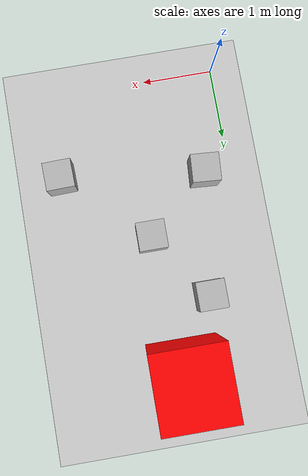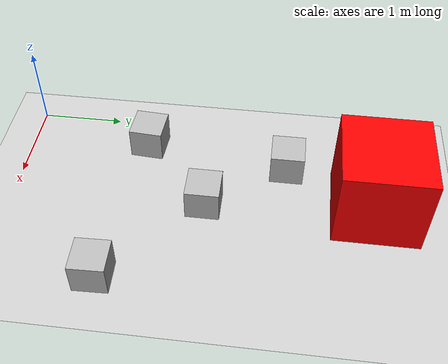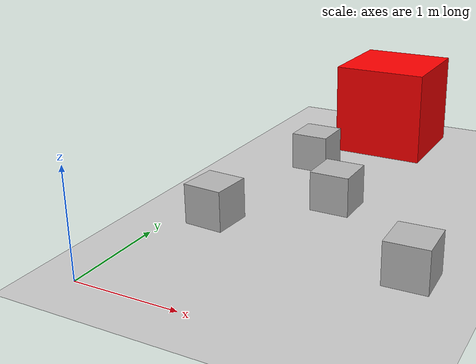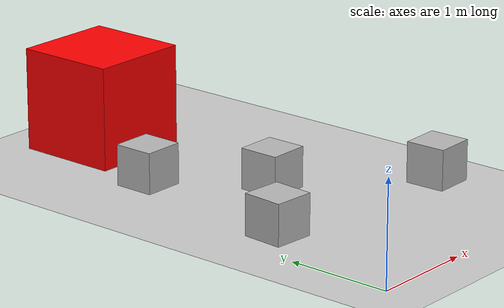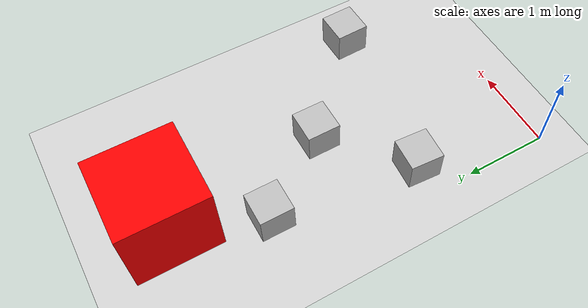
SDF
<sdf version="1.6">
 <world name="default">
  <light name="sun" type="directional">
   <pose>0 0 10 0 -0 0</pose>
   <diffuse>0.8 0.8 0.8 1</diffuse>
   <specular>0.1 0.1 0.1 1</specular>
   <attenuation>
    <range>1000</range>
    <constant>0.9</constant>
    <linear>0.01</linear>
    <quadratic>0.001</quadratic>
   </attenuation>
   <direction>-0.5 0.5 -1</direction>
  </light>
  <model name="ground_plane">
   <static>1</static>
   <link name="link">
    <collision name="collision">
     <geometry><plane><normal>0 0 1</normal><size>100 100</size></plane></geometry>
     <surface><friction><ode><mu>100</mu><mu2>50</mu2></ode></friction></surface>
    </collision>
    <visual name="visual">
     <cast_shadows>0</cast_shadows>
     <geometry><plane><normal>0 0 1</normal><size>100 100</size></plane></geometry>
     <material>
      <script><uri>file://media/materials/scripts/gazebo.material</uri><name>Gazebo/Grey</name></script>
     </material>
    </visual>
   </link>
  </model>
  <gravity>0 0 -9.8</gravity>
  <magnetic_field>6e-06 2.3e-05 -4.2e-05</magnetic_field>
  <atmosphere type="adiabatic"/>
  <physics name="default_physics" default="0" type="ode">
   <max_step_size>0.001</max_step_size>
   <real_time_factor>1</real_time_factor>
   <real_time_update_rate>1000</real_time_update_rate>
  </physics>
  <scene><ambient>0.4 0.4 0.4 1</ambient><background>0.7 0.7 0.7 1</background><shadows>1</shadows></scene>
  <spherical_coordinates>
   <surface_model>EARTH_WGS84</surface_model>
   <latitude_deg>0</latitude_deg>
   <longitude_deg>0</longitude_deg>
   <elevation>0</elevation>
   <heading_deg>0</heading_deg>
  </spherical_coordinates>
  <model name="cardboard_box">
   <pose>0.393196 1.48645 0.149 0 0 -0.06975</pose>
   <link name="link">
    <inertial>
     <mass>2</mass>
     <inertia>
      <ixx>0.0416667</ixx>
      <ixy>0</ixy>
      <ixz>0</ixz>
      <iyy>0.0566667</iyy>
      <iyz>0</iyz>
      <izz>0.0683333</izz>
     </inertia>
    </inertial>
    <collision name="collision">
     <geometry><box><size>0.5 0.4 0.3</size></box></geometry>
     <surface>
      <friction><ode><mu>1</mu><mu2>1</mu2></ode></friction>
      <contact><ode><kp>1e+07</kp><kd>1</kd><min_depth>0.001</min_depth><max_vel>0.1</max_vel></ode></contact>
     </surface>
    </collision>
    <visual name="visual">
     <pose>0 0 -0.15 0 -0 0</pose>
     <geometry>
      <mesh><uri>model://cardboard_box/meshes/cardboard_box.dae</uri><scale>1 1 1</scale></mesh>
     </geometry>
    </visual>
   </link>
  </model>
  <model name="cardboard_box_0">
   <pose>2.41257 1.24828 0.149 0 -0 0.028397</pose>
   <link name="link">
    <inertial>
     <mass>2</mass>
     <inertia>
      <ixx>0.0416667</ixx>
      <ixy>0</ixy>
      <ixz>0</ixz>
      <iyy>0.0566667</iyy>
      <iyz>0</iyz>
      <izz>0.0683333</izz>
     </inertia>
    </inertial>
    <collision name="collision">
     <geometry><box><size>0.5 0.4 0.3</size></box></geometry>
     <surface>
      <friction><ode><mu>1</mu><mu2>1</mu2></ode></friction>
      <contact><ode><kp>1e+07</kp><kd>1</kd><min_depth>0.001</min_depth><max_vel>0.1</max_vel></ode></contact>
     </surface>
    </collision>
    <visual name="visual">
     <pose>0 0 -0.15 0 -0 0</pose>
     <geometry>
      <mesh><uri>model://cardboard_box/meshes/cardboard_box.dae</uri><scale>1 1 1</scale></mesh>
     </geometry>
    </visual>
   </link>
  </model>
  <model name="red_box">
   <link name="link">
    <inertial>
     <mass>1</mass>
     <inertia>
      <ixx>0.166667</ixx>
      <ixy>0</ixy>
      <ixz>0</ixz>
      <iyy>0.166667</iyy>
      <iyz>0</iyz>
      <izz>0.166667</izz>
     </inertia>
    </inertial>
    <visual name="visual">
     <geometry><box><size>1 1 1</size></box></geometry>
     <material>
      <script><name>Gazebo/Grey</name><uri>file://media/materials/scripts/gazebo.material</uri></script>
      <ambient>1 0 0 1</ambient>
      <diffuse>1 0 0 1</diffuse>
      <specular>0.3 0.3 0.3 1</specular>
      <emissive>0 0 0 1</emissive>
      <shader type="vertex"><normal_map>__default__</normal_map></shader>
     </material>
    </visual>
    <collision name="collision">
     <geometry><box><size>1 1 1</size></box></geometry>
     <surface>
      <friction>
       <ode><mu>1</mu><mu2>1</mu2><fdir1>0 0 0</fdir1><slip1>0</slip1><slip2>0</slip2></ode>
       <torsional>
        <coefficient>1</coefficient>
        <patch_radius>0</patch_radius>
        <surface_radius>0</surface_radius>
        <use_patch_radius>1</use_patch_radius>
        <ode><slip>0</slip></ode>
       </torsional>
      </friction>
      <bounce><restitution_coefficient>0</restitution_coefficient><threshold>1e+06</threshold></bounce>
      <contact>
       <collide_without_contact>0</collide_without_contact>
       <collide_without_contact_bitmask>1</collide_without_contact_bitmask>
       <collide_bitmask>1</collide_bitmask>
       <ode>
        <soft_cfm>0</soft_cfm>
        <soft_erp>0.2</soft_erp>
        <kp>1e+13</kp>
        <kd>1</kd>
        <max_vel>0.01</max_vel>
        <min_depth>0</min_depth>
       </ode>
       <bullet>
        <split_impulse>1</split_impulse>
        <split_impulse_penetration_threshold>-0.01</split_impulse_penetration_threshold>
        <soft_cfm>0</soft_cfm>
        <soft_erp>0.2</soft_erp>
        <kp>1e+13</kp>
        <kd>1</kd>
       </bullet>
      </contact>
     </surface>
    </collision>
   </link>
   <static>0</static>
   <pose>1.12532 4.26159 0.499995 -0 1e-05 -0.001372</pose>
  </model>
  <model name="cardboard_box_1">
   <pose>0.62507 3.21977 0.149 0 -0 0</pose>
   <link name="link">
    <inertial>
     <mass>2</mass>
     <inertia>
      <ixx>0.0416667</ixx>
      <ixy>0</ixy>
      <ixz>0</ixz>
      <iyy>0.0566667</iyy>
      <iyz>0</iyz>
      <izz>0.0683333</izz>
     </inertia>
    </inertial>
    <collision name="collision">
     <geometry><box><size>0.5 0.4 0.3</size></box></geometry>
     <surface>
      <friction><ode><mu>1</mu><mu2>1</mu2></ode></friction>
      <contact><ode><kp>1e+07</kp><kd>1</kd><min_depth>0.001</min_depth><max_vel>0.1</max_vel></ode></contact>
     </surface>
    </collision>
    <visual name="visual">
     <pose>0 0 -0.15 0 -0 0</pose>
     <geometry>
      <mesh><uri>model://cardboard_box/meshes/cardboard_box.dae</uri><scale>1 1 1</scale></mesh>
     </geometry>
    </visual>
   </link>
  </model>
  <model name="cardboard_box_2">
   <pose>1.28726 2.28691 0.14951 2e-06 -2e-06 -0</pose>
   <link name="link">
    <inertial>
     <mass>2</mass>
     <inertia>
      <ixx>0.0416667</ixx>
      <ixy>0</ixy>
      <ixz>0</ixz>
      <iyy>0.0566667</iyy>
      <iyz>0</iyz>
      <izz>0.0683333</izz>
     </inertia>
    </inertial>
    <collision name="collision">
     <geometry><box><size>0.5 0.4 0.3</size></box></geometry>
     <surface>
      <friction><ode><mu>1</mu><mu2>1</mu2></ode></friction>
      <contact><ode><kp>1e+07</kp><kd>1</kd><min_depth>0.001</min_depth><max_vel>0.1</max_vel></ode></contact>
     </surface>
    </collision>
    <visual name="visual">
     <pose>0 0 -0.15 0 -0 0</pose>
     <geometry>
      <mesh><uri>model://cardboard_box/meshes/cardboard_box.dae</uri><scale>1 1 1</scale></mesh>
     </geometry>
    </visual>
   </link>
  </model>
 </world>
</sdf>
